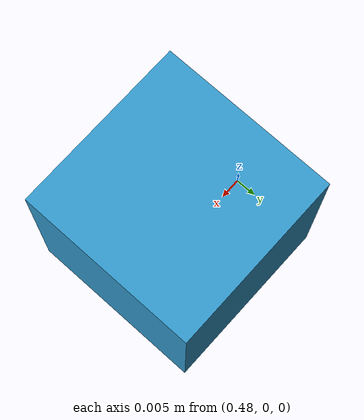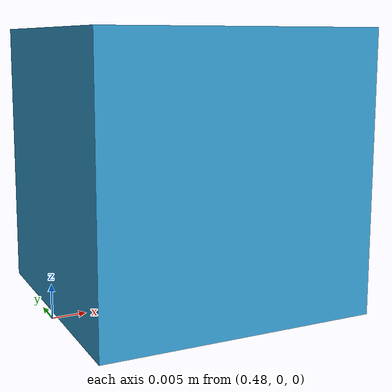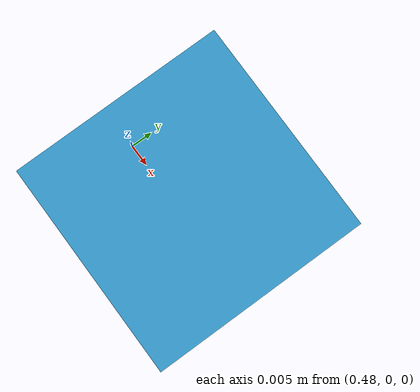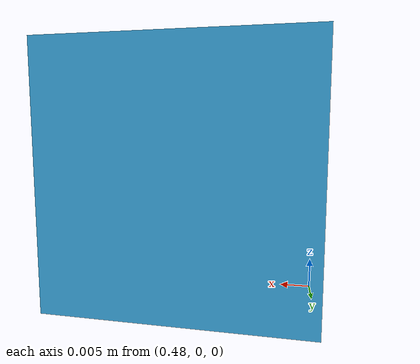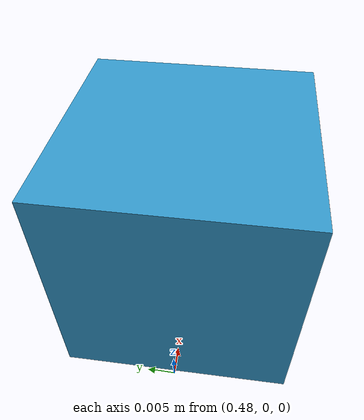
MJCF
<mujoco model="table_bin_box">

    <worldbody>
        <!-- Table -->
        <geom name="table" type="box" size="0.4 0.25 0.005" pos="0.0 -0.4 0.2" rgba="0.7 0.5 0.3 1"/>

        <!-- Bin placed on top of table -->

        <body name="cube" pos="0.5 0 .021" quat="0.5 0.5 0.5 0.5">
            <freejoint name="cube_joint"/>
            <inertial pos="0 0 0" mass="0.01" diaginertia="0.0001 0.0001 0.0001"/>
            <geom name="bin" type="box" size="0.02 0.02 0.02" rgba="0.2 0.6 0.8 1" contype="0" conaffinity="0"/>
        </body>

    </worldbody>

    <actuator/>
</mujoco>
